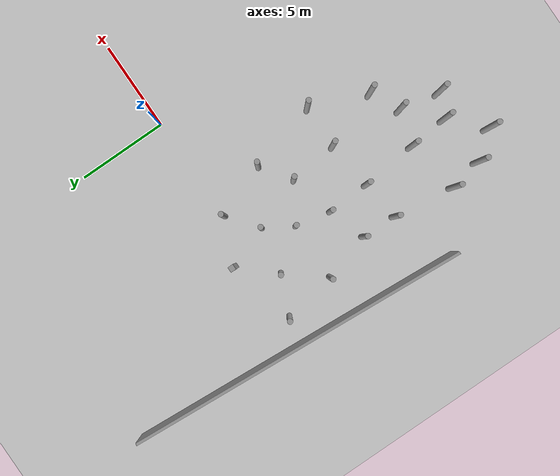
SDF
<sdf version="1.6">
 <world name="default">
  <model name="ground_plane">
   <static>1</static>
   <link name="link">
    <collision name="collision">
     <geometry><plane><normal>0 0 1</normal><size>100 100</size></plane></geometry>
    </collision>
    <visual name="visual">
     <cast_shadows>0</cast_shadows>
     <geometry><plane><normal>0 0 1</normal><size>100 100</size></plane></geometry>
     <material>
      <script><uri>file://media/materials/scripts/gazebo.material</uri><name>Gazebo/Gray</name></script>
     </material>
    </visual>
   </link>
  </model>
  <model name="unit_box_clone_15">
   <link name="link">
    <inertial>
     <mass>1000</mass>
     <inertia><ixx>166.667</ixx><ixy>0</ixy><ixz>0</ixz><iyy>166.667</iyy><iyz>0</iyz><izz>166.667</izz></inertia>
    </inertial>
    <visual name="visual">
     <geometry><box><size>0.3 0.3 4</size></box></geometry>
     <material>
      <script><name>Gazebo/Grey</name><uri>file://media/materials/scripts/gazebo.material</uri></script>
      <shader type="vertex"><normal_map>__default__</normal_map></shader>
      <ambient>0.3 0.3 0.3 1</ambient>
      <diffuse>0.7 0.7 0.7 1</diffuse>
      <specular>0.01 0.01 0.01 1</specular>
      <emissive>0 0 0 1</emissive>
     </material>
    </visual>
    <collision name="collision">
     <geometry><box><size>0.3 0.3 4</size></box></geometry>
     <surface>
      <friction>
       <ode><mu>1</mu><mu2>1</mu2><fdir1>0 0 0</fdir1><slip1>0</slip1><slip2>0</slip2></ode>
       <torsional>
        <coefficient>1</coefficient>
        <patch_radius>0</patch_radius>
        <surface_radius>0</surface_radius>
        <use_patch_radius>1</use_patch_radius>
        <ode><slip>0</slip></ode>
       </torsional>
      </friction>
      <bounce><restitution_coefficient>0</restitution_coefficient><threshold>1e+06</threshold></bounce>
      <contact>
       <collide_without_contact>0</collide_without_contact>
       <collide_without_contact_bitmask>1</collide_without_contact_bitmask>
       <collide_bitmask>1</collide_bitmask>
       <ode>
        <soft_cfm>0</soft_cfm>
        <soft_erp>0.2</soft_erp>
        <kp>1e+13</kp>
        <kd>1</kd>
        <max_vel>0.01</max_vel>
        <min_depth>0</min_depth>
       </ode>
       <bullet>
        <split_impulse>1</split_impulse>
        <split_impulse_penetration_threshold>-0.01</split_impulse_penetration_threshold>
        <soft_cfm>0</soft_cfm>
        <soft_erp>0.2</soft_erp>
        <kp>1e+13</kp>
        <kd>1</kd>
       </bullet>
      </contact>
     </surface>
    </collision>
   </link>
   <static>0</static>
   <pose>-8.5234 1.00011 2.00001 -1e-05 -4.3e-05 -0.001587</pose>
  </model>
  <model name="unit_cylinder_clone_1_clone">
   <link name="link">
    <inertial>
     <mass>1000</mass>
     <inertia><ixx>145.833</ixx><ixy>0</ixy><ixz>0</ixz><iyy>145.833</iyy><iyz>0</iyz><izz>125</izz></inertia>
    </inertial>
    <visual name="visual">
     <geometry><cylinder><radius>0.15</radius><length>4</length></cylinder></geometry>
     <material>
      <script><name>Gazebo/Grey</name><uri>file://media/materials/scripts/gazebo.material</uri></script>
      <shader type="vertex"><normal_map>__default__</normal_map></shader>
      <ambient>0.3 0.3 0.3 1</ambient>
      <diffuse>0.7 0.7 0.7 1</diffuse>
      <specular>0.01 0.01 0.01 1</specular>
      <emissive>0 0 0 1</emissive>
     </material>
    </visual>
    <collision name="collision">
     <geometry><cylinder><radius>0.15</radius><length>4</length></cylinder></geometry>
     <surface>
      <friction>
       <ode><mu>1</mu><mu2>1</mu2><fdir1>0 0 0</fdir1><slip1>0</slip1><slip2>0</slip2></ode>
       <torsional>
        <coefficient>1</coefficient>
        <patch_radius>0</patch_radius>
        <surface_radius>0</surface_radius>
        <use_patch_radius>1</use_patch_radius>
        <ode><slip>0</slip></ode>
       </torsional>
      </friction>
      <bounce><restitution_coefficient>0</restitution_coefficient><threshold>1e+06</threshold></bounce>
      <contact>
       <collide_without_contact>0</collide_without_contact>
       <collide_without_contact_bitmask>1</collide_without_contact_bitmask>
       <collide_bitmask>1</collide_bitmask>
       <ode>
        <soft_cfm>0</soft_cfm>
        <soft_erp>0.2</soft_erp>
        <kp>1e+13</kp>
        <kd>1</kd>
        <max_vel>0.01</max_vel>
        <min_depth>0</min_depth>
       </ode>
       <bullet>
        <split_impulse>1</split_impulse>
        <split_impulse_penetration_threshold>-0.01</split_impulse_penetration_threshold>
        <soft_cfm>0</soft_cfm>
        <soft_erp>0.2</soft_erp>
        <kp>1e+13</kp>
        <kd>1</kd>
       </bullet>
      </contact>
     </surface>
    </collision>
   </link>
   <static>0</static>
   <pose>-3.80698 -6.85046 1.99995 -0.000251 0.000106 -0.394235</pose>
  </model>
  <model name="unit_cylinder_clone_1_clone_0">
   <link name="link">
    <inertial>
     <mass>1000</mass>
     <inertia><ixx>145.833</ixx><ixy>0</ixy><ixz>0</ixz><iyy>145.833</iyy><iyz>0</iyz><izz>125</izz></inertia>
    </inertial>
    <visual name="visual">
     <geometry><cylinder><radius>0.15</radius><length>4</length></cylinder></geometry>
     <material>
      <script><name>Gazebo/Grey</name><uri>file://media/materials/scripts/gazebo.material</uri></script>
      <shader type="vertex"><normal_map>__default__</normal_map></shader>
      <ambient>0.3 0.3 0.3 1</ambient>
      <diffuse>0.7 0.7 0.7 1</diffuse>
      <specular>0.01 0.01 0.01 1</specular>
      <emissive>0 0 0 1</emissive>
     </material>
    </visual>
    <collision name="collision">
     <geometry><cylinder><radius>0.15</radius><length>4</length></cylinder></geometry>
     <surface>
      <friction>
       <ode><mu>1</mu><mu2>1</mu2><fdir1>0 0 0</fdir1><slip1>0</slip1><slip2>0</slip2></ode>
       <torsional>
        <coefficient>1</coefficient>
        <patch_radius>0</patch_radius>
        <surface_radius>0</surface_radius>
        <use_patch_radius>1</use_patch_radius>
        <ode><slip>0</slip></ode>
       </torsional>
      </friction>
      <bounce><restitution_coefficient>0</restitution_coefficient><threshold>1e+06</threshold></bounce>
      <contact>
       <collide_without_contact>0</collide_without_contact>
       <collide_without_contact_bitmask>1</collide_without_contact_bitmask>
       <collide_bitmask>1</collide_bitmask>
       <ode>
        <soft_cfm>0</soft_cfm>
        <soft_erp>0.2</soft_erp>
        <kp>1e+13</kp>
        <kd>1</kd>
        <max_vel>0.01</max_vel>
        <min_depth>0</min_depth>
       </ode>
       <bullet>
        <split_impulse>1</split_impulse>
        <split_impulse_penetration_threshold>-0.01</split_impulse_penetration_threshold>
        <soft_cfm>0</soft_cfm>
        <soft_erp>0.2</soft_erp>
        <kp>1e+13</kp>
        <kd>1</kd>
       </bullet>
      </contact>
     </surface>
    </collision>
   </link>
   <static>0</static>
   <pose>-8.56983 -2.859 1.99995 -0.000251 0.000106 -0.392513</pose>
  </model>
  <model name="unit_cylinder_clone_1_clone_1">
   <link name="link">
    <inertial>
     <mass>1000</mass>
     <inertia><ixx>145.833</ixx><ixy>0</ixy><ixz>0</ixz><iyy>145.833</iyy><iyz>0</iyz><izz>125</izz></inertia>
    </inertial>
    <visual name="visual">
     <geometry><cylinder><radius>0.15</radius><length>4</length></cylinder></geometry>
     <material>
      <script><name>Gazebo/Grey</name><uri>file://media/materials/scripts/gazebo.material</uri></script>
      <shader type="vertex"><normal_map>__default__</normal_map></shader>
      <ambient>0.3 0.3 0.3 1</ambient>
      <diffuse>0.7 0.7 0.7 1</diffuse>
      <specular>0.01 0.01 0.01 1</specular>
      <emissive>0 0 0 1</emissive>
     </material>
    </visual>
    <collision name="collision">
     <geometry><cylinder><radius>0.15</radius><length>4</length></cylinder></geometry>
     <surface>
      <friction>
       <ode><mu>1</mu><mu2>1</mu2><fdir1>0 0 0</fdir1><slip1>0</slip1><slip2>0</slip2></ode>
       <torsional>
        <coefficient>1</coefficient>
        <patch_radius>0</patch_radius>
        <surface_radius>0</surface_radius>
        <use_patch_radius>1</use_patch_radius>
        <ode><slip>0</slip></ode>
       </torsional>
      </friction>
      <bounce><restitution_coefficient>0</restitution_coefficient><threshold>1e+06</threshold></bounce>
      <contact>
       <collide_without_contact>0</collide_without_contact>
       <collide_without_contact_bitmask>1</collide_without_contact_bitmask>
       <collide_bitmask>1</collide_bitmask>
       <ode>
        <soft_cfm>0</soft_cfm>
        <soft_erp>0.2</soft_erp>
        <kp>1e+13</kp>
        <kd>1</kd>
        <max_vel>0.01</max_vel>
        <min_depth>0</min_depth>
       </ode>
       <bullet>
        <split_impulse>1</split_impulse>
        <split_impulse_penetration_threshold>-0.01</split_impulse_penetration_threshold>
        <soft_cfm>0</soft_cfm>
        <soft_erp>0.2</soft_erp>
        <kp>1e+13</kp>
        <kd>1</kd>
       </bullet>
      </contact>
     </surface>
    </collision>
   </link>
   <static>0</static>
   <pose>-11.8073 -2.83621 1.99995 -0.000251 0.000106 -0.395906</pose>
  </model>
  <model name="unit_cylinder_clone_1_clone_2">
   <link name="link">
    <inertial>
     <mass>1000</mass>
     <inertia><ixx>145.833</ixx><ixy>0</ixy><ixz>0</ixz><iyy>145.833</iyy><iyz>0</iyz><izz>125</izz></inertia>
    </inertial>
    <visual name="visual">
     <geometry><cylinder><radius>0.15</radius><length>4</length></cylinder></geometry>
     <material>
      <script><name>Gazebo/Grey</name><uri>file://media/materials/scripts/gazebo.material</uri></script>
      <shader type="vertex"><normal_map>__default__</normal_map></shader>
      <ambient>0.3 0.3 0.3 1</ambient>
      <diffuse>0.7 0.7 0.7 1</diffuse>
      <specular>0.01 0.01 0.01 1</specular>
      <emissive>0 0 0 1</emissive>
     </material>
    </visual>
    <collision name="collision">
     <geometry><cylinder><radius>0.15</radius><length>4</length></cylinder></geometry>
     <surface>
      <friction>
       <ode><mu>1</mu><mu2>1</mu2><fdir1>0 0 0</fdir1><slip1>0</slip1><slip2>0</slip2></ode>
       <torsional>
        <coefficient>1</coefficient>
        <patch_radius>0</patch_radius>
        <surface_radius>0</surface_radius>
        <use_patch_radius>1</use_patch_radius>
        <ode><slip>0</slip></ode>
       </torsional>
      </friction>
      <bounce><restitution_coefficient>0</restitution_coefficient><threshold>1e+06</threshold></bounce>
      <contact>
       <collide_without_contact>0</collide_without_contact>
       <collide_without_contact_bitmask>1</collide_without_contact_bitmask>
       <collide_bitmask>1</collide_bitmask>
       <ode>
        <soft_cfm>0</soft_cfm>
        <soft_erp>0.2</soft_erp>
        <kp>1e+13</kp>
        <kd>1</kd>
        <max_vel>0.01</max_vel>
        <min_depth>0</min_depth>
       </ode>
       <bullet>
        <split_impulse>1</split_impulse>
        <split_impulse_penetration_threshold>-0.01</split_impulse_penetration_threshold>
        <soft_cfm>0</soft_cfm>
        <soft_erp>0.2</soft_erp>
        <kp>1e+13</kp>
        <kd>1</kd>
       </bullet>
      </contact>
     </surface>
    </collision>
   </link>
   <static>0</static>
   <pose>-6.21285 -6.79749 1.99995 -0.000251 0.000106 -0.393123</pose>
  </model>
  <model name="unit_cylinder_clone_1_clone_3">
   <link name="link">
    <inertial>
     <mass>1000</mass>
     <inertia><ixx>145.833</ixx><ixy>0</ixy><ixz>0</ixz><iyy>145.833</iyy><iyz>0</iyz><izz>125</izz></inertia>
    </inertial>
    <visual name="visual">
     <geometry><cylinder><radius>0.15</radius><length>4</length></cylinder></geometry>
     <material>
      <script><name>Gazebo/Grey</name><uri>file://media/materials/scripts/gazebo.material</uri></script>
      <shader type="vertex"><normal_map>__default__</normal_map></shader>
      <ambient>0.3 0.3 0.3 1</ambient>
      <diffuse>0.7 0.7 0.7 1</diffuse>
      <specular>0.01 0.01 0.01 1</specular>
      <emissive>0 0 0 1</emissive>
     </material>
    </visual>
    <collision name="collision">
     <geometry><cylinder><radius>0.15</radius><length>4</length></cylinder></geometry>
     <surface>
      <friction>
       <ode><mu>1</mu><mu2>1</mu2><fdir1>0 0 0</fdir1><slip1>0</slip1><slip2>0</slip2></ode>
       <torsional>
        <coefficient>1</coefficient>
        <patch_radius>0</patch_radius>
        <surface_radius>0</surface_radius>
        <use_patch_radius>1</use_patch_radius>
        <ode><slip>0</slip></ode>
       </torsional>
      </friction>
      <bounce><restitution_coefficient>0</restitution_coefficient><threshold>1e+06</threshold></bounce>
      <contact>
       <collide_without_contact>0</collide_without_contact>
       <collide_without_contact_bitmask>1</collide_without_contact_bitmask>
       <collide_bitmask>1</collide_bitmask>
       <ode>
        <soft_cfm>0</soft_cfm>
        <soft_erp>0.2</soft_erp>
        <kp>1e+13</kp>
        <kd>1</kd>
        <max_vel>0.01</max_vel>
        <min_depth>0</min_depth>
       </ode>
       <bullet>
        <split_impulse>1</split_impulse>
        <split_impulse_penetration_threshold>-0.01</split_impulse_penetration_threshold>
        <soft_cfm>0</soft_cfm>
        <soft_erp>0.2</soft_erp>
        <kp>1e+13</kp>
        <kd>1</kd>
       </bullet>
      </contact>
     </surface>
    </collision>
   </link>
   <static>0</static>
   <pose>-7.64323 -1.32454 1.99995 -0.000252 0.000105 -0.397866</pose>
  </model>
  <model name="unit_cylinder_clone_1_clone_4">
   <link name="link">
    <inertial>
     <mass>1000</mass>
     <inertia><ixx>145.833</ixx><ixy>0</ixy><ixz>0</ixz><iyy>145.833</iyy><iyz>0</iyz><izz>125</izz></inertia>
    </inertial>
    <visual name="visual">
     <geometry><cylinder><radius>0.15</radius><length>4</length></cylinder></geometry>
     <material>
      <script><name>Gazebo/Grey</name><uri>file://media/materials/scripts/gazebo.material</uri></script>
      <shader type="vertex"><normal_map>__default__</normal_map></shader>
      <ambient>0.3 0.3 0.3 1</ambient>
      <diffuse>0.7 0.7 0.7 1</diffuse>
      <specular>0.01 0.01 0.01 1</specular>
      <emissive>0 0 0 1</emissive>
     </material>
    </visual>
    <collision name="collision">
     <geometry><cylinder><radius>0.15</radius><length>4</length></cylinder></geometry>
     <surface>
      <friction>
       <ode><mu>1</mu><mu2>1</mu2><fdir1>0 0 0</fdir1><slip1>0</slip1><slip2>0</slip2></ode>
       <torsional>
        <coefficient>1</coefficient>
        <patch_radius>0</patch_radius>
        <surface_radius>0</surface_radius>
        <use_patch_radius>1</use_patch_radius>
        <ode><slip>0</slip></ode>
       </torsional>
      </friction>
      <bounce><restitution_coefficient>0</restitution_coefficient><threshold>1e+06</threshold></bounce>
      <contact>
       <collide_without_contact>0</collide_without_contact>
       <collide_without_contact_bitmask>1</collide_without_contact_bitmask>
       <collide_bitmask>1</collide_bitmask>
       <ode>
        <soft_cfm>0</soft_cfm>
        <soft_erp>0.2</soft_erp>
        <kp>1e+13</kp>
        <kd>1</kd>
        <max_vel>0.01</max_vel>
        <min_depth>0</min_depth>
       </ode>
       <bullet>
        <split_impulse>1</split_impulse>
        <split_impulse_penetration_threshold>-0.01</split_impulse_penetration_threshold>
        <soft_cfm>0</soft_cfm>
        <soft_erp>0.2</soft_erp>
        <kp>1e+13</kp>
        <kd>1</kd>
       </bullet>
      </contact>
     </surface>
    </collision>
   </link>
   <static>0</static>
   <pose>-8.96274 -4.78721 1.99995 -0.000252 0.000105 -0.397868</pose>
  </model>
  <model name="unit_cylinder_clone_1_clone_6">
   <link name="link">
    <inertial>
     <mass>1000</mass>
     <inertia><ixx>145.833</ixx><ixy>0</ixy><ixz>0</ixz><iyy>145.833</iyy><iyz>0</iyz><izz>125</izz></inertia>
    </inertial>
    <visual name="visual">
     <geometry><cylinder><radius>0.15</radius><length>4</length></cylinder></geometry>
     <material>
      <script><name>Gazebo/Grey</name><uri>file://media/materials/scripts/gazebo.material</uri></script>
      <shader type="vertex"><normal_map>__default__</normal_map></shader>
      <ambient>0.3 0.3 0.3 1</ambient>
      <diffuse>0.7 0.7 0.7 1</diffuse>
      <specular>0.01 0.01 0.01 1</specular>
      <emissive>0 0 0 1</emissive>
     </material>
    </visual>
    <collision name="collision">
     <geometry><cylinder><radius>0.15</radius><length>4</length></cylinder></geometry>
     <surface>
      <friction>
       <ode><mu>1</mu><mu2>1</mu2><fdir1>0 0 0</fdir1><slip1>0</slip1><slip2>0</slip2></ode>
       <torsional>
        <coefficient>1</coefficient>
        <patch_radius>0</patch_radius>
        <surface_radius>0</surface_radius>
        <use_patch_radius>1</use_patch_radius>
        <ode><slip>0</slip></ode>
       </torsional>
      </friction>
      <bounce><restitution_coefficient>0</restitution_coefficient><threshold>1e+06</threshold></bounce>
      <contact>
       <collide_without_contact>0</collide_without_contact>
       <collide_without_contact_bitmask>1</collide_without_contact_bitmask>
       <collide_bitmask>1</collide_bitmask>
       <ode>
        <soft_cfm>0</soft_cfm>
        <soft_erp>0.2</soft_erp>
        <kp>1e+13</kp>
        <kd>1</kd>
        <max_vel>0.01</max_vel>
        <min_depth>0</min_depth>
       </ode>
       <bullet>
        <split_impulse>1</split_impulse>
        <split_impulse_penetration_threshold>-0.01</split_impulse_penetration_threshold>
        <soft_cfm>0</soft_cfm>
        <soft_erp>0.2</soft_erp>
        <kp>1e+13</kp>
        <kd>1</kd>
       </bullet>
      </contact>
     </surface>
    </collision>
   </link>
   <static>0</static>
   <pose>-6.51701 -4.13477 1.99998 -2e-06 -0 -0.102895</pose>
  </model>
  <model name="unit_cylinder_clone_1_clone_11">
   <link name="link">
    <inertial>
     <mass>1000</mass>
     <inertia><ixx>145.833</ixx><ixy>0</ixy><ixz>0</ixz><iyy>145.833</iyy><iyz>0</iyz><izz>125</izz></inertia>
    </inertial>
    <visual name="visual">
     <geometry><cylinder><radius>0.15</radius><length>4</length></cylinder></geometry>
     <material>
      <script><name>Gazebo/Grey</name><uri>file://media/materials/scripts/gazebo.material</uri></script>
      <shader type="vertex"><normal_map>__default__</normal_map></shader>
      <ambient>0.3 0.3 0.3 1</ambient>
      <diffuse>0.7 0.7 0.7 1</diffuse>
      <specular>0.01 0.01 0.01 1</specular>
      <emissive>0 0 0 1</emissive>
     </material>
    </visual>
    <collision name="collision">
     <geometry><cylinder><radius>0.15</radius><length>4</length></cylinder></geometry>
     <surface>
      <friction>
       <ode><mu>1</mu><mu2>1</mu2><fdir1>0 0 0</fdir1><slip1>0</slip1><slip2>0</slip2></ode>
       <torsional>
        <coefficient>1</coefficient>
        <patch_radius>0</patch_radius>
        <surface_radius>0</surface_radius>
        <use_patch_radius>1</use_patch_radius>
        <ode><slip>0</slip></ode>
       </torsional>
      </friction>
      <bounce><restitution_coefficient>0</restitution_coefficient><threshold>1e+06</threshold></bounce>
      <contact>
       <collide_without_contact>0</collide_without_contact>
       <collide_without_contact_bitmask>1</collide_without_contact_bitmask>
       <collide_bitmask>1</collide_bitmask>
       <ode>
        <soft_cfm>0</soft_cfm>
        <soft_erp>0.2</soft_erp>
        <kp>1e+13</kp>
        <kd>1</kd>
        <max_vel>0.01</max_vel>
        <min_depth>0</min_depth>
       </ode>
       <bullet>
        <split_impulse>1</split_impulse>
        <split_impulse_penetration_threshold>-0.01</split_impulse_penetration_threshold>
        <soft_cfm>0</soft_cfm>
        <soft_erp>0.2</soft_erp>
        <kp>1e+13</kp>
        <kd>1</kd>
       </bullet>
      </contact>
     </surface>
    </collision>
   </link>
   <static>0</static>
   <pose>-4.86901 -3.0087 1.99995 -0.000251 0.000106 -0.393032</pose>
  </model>
  <model name="unit_cylinder_clone_1_clone_12">
   <link name="link">
    <inertial>
     <mass>1000</mass>
     <inertia><ixx>145.833</ixx><ixy>0</ixy><ixz>0</ixz><iyy>145.833</iyy><iyz>0</iyz><izz>125</izz></inertia>
    </inertial>
    <visual name="visual">
     <geometry><cylinder><radius>0.15</radius><length>4</length></cylinder></geometry>
     <material>
      <script><name>Gazebo/Grey</name><uri>file://media/materials/scripts/gazebo.material</uri></script>
      <shader type="vertex"><normal_map>__default__</normal_map></shader>
      <ambient>0.3 0.3 0.3 1</ambient>
      <diffuse>0.7 0.7 0.7 1</diffuse>
      <specular>0.01 0.01 0.01 1</specular>
      <emissive>0 0 0 1</emissive>
     </material>
    </visual>
    <collision name="collision">
     <geometry><cylinder><radius>0.15</radius><length>4</length></cylinder></geometry>
     <surface>
      <friction>
       <ode><mu>1</mu><mu2>1</mu2><fdir1>0 0 0</fdir1><slip1>0</slip1><slip2>0</slip2></ode>
       <torsional>
        <coefficient>1</coefficient>
        <patch_radius>0</patch_radius>
        <surface_radius>0</surface_radius>
        <use_patch_radius>1</use_patch_radius>
        <ode><slip>0</slip></ode>
       </torsional>
      </friction>
      <bounce><restitution_coefficient>0</restitution_coefficient><threshold>1e+06</threshold></bounce>
      <contact>
       <collide_without_contact>0</collide_without_contact>
       <collide_without_contact_bitmask>1</collide_without_contact_bitmask>
       <collide_bitmask>1</collide_bitmask>
       <ode>
        <soft_cfm>0</soft_cfm>
        <soft_erp>0.2</soft_erp>
        <kp>1e+13</kp>
        <kd>1</kd>
        <max_vel>0.01</max_vel>
        <min_depth>0</min_depth>
       </ode>
       <bullet>
        <split_impulse>1</split_impulse>
        <split_impulse_penetration_threshold>-0.01</split_impulse_penetration_threshold>
        <soft_cfm>0</soft_cfm>
        <soft_erp>0.2</soft_erp>
        <kp>1e+13</kp>
        <kd>1</kd>
       </bullet>
      </contact>
     </surface>
    </collision>
   </link>
   <static>0</static>
   <pose>-6.00225 -0.068328 1.99995 -0.000252 0.000105 -0.397865</pose>
  </model>
  <model name="unit_cylinder_clone_1_clone_14">
   <link name="link">
    <inertial>
     <mass>1000</mass>
     <inertia><ixx>145.833</ixx><ixy>0</ixy><ixz>0</ixz><iyy>145.833</iyy><iyz>0</iyz><izz>125</izz></inertia>
    </inertial>
    <visual name="visual">
     <geometry><cylinder><radius>0.15</radius><length>4</length></cylinder></geometry>
     <material>
      <script><name>Gazebo/Grey</name><uri>file://media/materials/scripts/gazebo.material</uri></script>
      <shader type="vertex"><normal_map>__default__</normal_map></shader>
      <ambient>0.3 0.3 0.3 1</ambient>
      <diffuse>0.7 0.7 0.7 1</diffuse>
      <specular>0.01 0.01 0.01 1</specular>
      <emissive>0 0 0 1</emissive>
     </material>
    </visual>
    <collision name="collision">
     <geometry><cylinder><radius>0.15</radius><length>4</length></cylinder></geometry>
     <surface>
      <friction>
       <ode><mu>1</mu><mu2>1</mu2><fdir1>0 0 0</fdir1><slip1>0</slip1><slip2>0</slip2></ode>
       <torsional>
        <coefficient>1</coefficient>
        <patch_radius>0</patch_radius>
        <surface_radius>0</surface_radius>
        <use_patch_radius>1</use_patch_radius>
        <ode><slip>0</slip></ode>
       </torsional>
      </friction>
      <bounce><restitution_coefficient>0</restitution_coefficient><threshold>1e+06</threshold></bounce>
      <contact>
       <collide_without_contact>0</collide_without_contact>
       <collide_without_contact_bitmask>1</collide_without_contact_bitmask>
       <collide_bitmask>1</collide_bitmask>
       <ode>
        <soft_cfm>0</soft_cfm>
        <soft_erp>0.2</soft_erp>
        <kp>1e+13</kp>
        <kd>1</kd>
        <max_vel>0.01</max_vel>
        <min_depth>0</min_depth>
       </ode>
       <bullet>
        <split_impulse>1</split_impulse>
        <split_impulse_penetration_threshold>-0.01</split_impulse_penetration_threshold>
        <soft_cfm>0</soft_cfm>
        <soft_erp>0.2</soft_erp>
        <kp>1e+13</kp>
        <kd>1</kd>
       </bullet>
      </contact>
     </surface>
    </collision>
   </link>
   <static>0</static>
   <pose>-10.1706 -0.819635 1.99995 -0.000252 0.000105 -0.397858</pose>
  </model>
  <model name="unit_cylinder_clone_1_clone_15">
   <link name="link">
    <inertial>
     <mass>1000</mass>
     <inertia><ixx>145.833</ixx><ixy>0</ixy><ixz>0</ixz><iyy>145.833</iyy><iyz>0</iyz><izz>125</izz></inertia>
    </inertial>
    <visual name="visual">
     <geometry><cylinder><radius>0.15</radius><length>4</length></cylinder></geometry>
     <material>
      <script><name>Gazebo/Grey</name><uri>file://media/materials/scripts/gazebo.material</uri></script>
      <shader type="vertex"><normal_map>__default__</normal_map></shader>
      <ambient>0.3 0.3 0.3 1</ambient>
      <diffuse>0.7 0.7 0.7 1</diffuse>
      <specular>0.01 0.01 0.01 1</specular>
      <emissive>0 0 0 1</emissive>
     </material>
    </visual>
    <collision name="collision">
     <geometry><cylinder><radius>0.15</radius><length>4</length></cylinder></geometry>
     <surface>
      <friction>
       <ode><mu>1</mu><mu2>1</mu2><fdir1>0 0 0</fdir1><slip1>0</slip1><slip2>0</slip2></ode>
       <torsional>
        <coefficient>1</coefficient>
        <patch_radius>0</patch_radius>
        <surface_radius>0</surface_radius>
        <use_patch_radius>1</use_patch_radius>
        <ode><slip>0</slip></ode>
       </torsional>
      </friction>
      <bounce><restitution_coefficient>0</restitution_coefficient><threshold>1e+06</threshold></bounce>
      <contact>
       <collide_without_contact>0</collide_without_contact>
       <collide_without_contact_bitmask>1</collide_without_contact_bitmask>
       <collide_bitmask>1</collide_bitmask>
       <ode>
        <soft_cfm>0</soft_cfm>
        <soft_erp>0.2</soft_erp>
        <kp>1e+13</kp>
        <kd>1</kd>
        <max_vel>0.01</max_vel>
        <min_depth>0</min_depth>
       </ode>
       <bullet>
        <split_impulse>1</split_impulse>
        <split_impulse_penetration_threshold>-0.01</split_impulse_penetration_threshold>
        <soft_cfm>0</soft_cfm>
        <soft_erp>0.2</soft_erp>
        <kp>1e+13</kp>
        <kd>1</kd>
       </bullet>
      </contact>
     </surface>
    </collision>
   </link>
   <static>0</static>
   <pose>-11.0708 -7.3976 1.99995 -0.000251 0.000106 -0.393078</pose>
  </model>
  <model name="unit_cylinder_clone_1_clone_16">
   <link name="link">
    <inertial>
     <mass>1000</mass>
     <inertia><ixx>145.833</ixx><ixy>0</ixy><ixz>0</ixz><iyy>145.833</iyy><iyz>0</iyz><izz>125</izz></inertia>
    </inertial>
    <visual name="visual">
     <geometry><cylinder><radius>0.15</radius><length>4</length></cylinder></geometry>
     <material>
      <script><name>Gazebo/Grey</name><uri>file://media/materials/scripts/gazebo.material</uri></script>
      <shader type="vertex"><normal_map>__default__</normal_map></shader>
      <ambient>0.3 0.3 0.3 1</ambient>
      <diffuse>0.7 0.7 0.7 1</diffuse>
      <specular>0.01 0.01 0.01 1</specular>
      <emissive>0 0 0 1</emissive>
     </material>
    </visual>
    <collision name="collision">
     <geometry><cylinder><radius>0.15</radius><length>4</length></cylinder></geometry>
     <surface>
      <friction>
       <ode><mu>1</mu><mu2>1</mu2><fdir1>0 0 0</fdir1><slip1>0</slip1><slip2>0</slip2></ode>
       <torsional>
        <coefficient>1</coefficient>
        <patch_radius>0</patch_radius>
        <surface_radius>0</surface_radius>
        <use_patch_radius>1</use_patch_radius>
        <ode><slip>0</slip></ode>
       </torsional>
      </friction>
      <bounce><restitution_coefficient>0</restitution_coefficient><threshold>1e+06</threshold></bounce>
      <contact>
       <collide_without_contact>0</collide_without_contact>
       <collide_without_contact_bitmask>1</collide_without_contact_bitmask>
       <collide_bitmask>1</collide_bitmask>
       <ode>
        <soft_cfm>0</soft_cfm>
        <soft_erp>0.2</soft_erp>
        <kp>1e+13</kp>
        <kd>1</kd>
        <max_vel>0.01</max_vel>
        <min_depth>0</min_depth>
       </ode>
       <bullet>
        <split_impulse>1</split_impulse>
        <split_impulse_penetration_threshold>-0.01</split_impulse_penetration_threshold>
        <soft_cfm>0</soft_cfm>
        <soft_erp>0.2</soft_erp>
        <kp>1e+13</kp>
        <kd>1</kd>
       </bullet>
      </contact>
     </surface>
    </collision>
   </link>
   <static>0</static>
   <pose>-5.02032 -9.97935 1.99995 -0.000252 0.000105 -0.397857</pose>
  </model>
  <model name="unit_cylinder_clone_1_clone_18">
   <link name="link">
    <inertial>
     <mass>1000</mass>
     <inertia><ixx>145.833</ixx><ixy>0</ixy><ixz>0</ixz><iyy>145.833</iyy><iyz>0</iyz><izz>125</izz></inertia>
    </inertial>
    <visual name="visual">
     <geometry><cylinder><radius>0.15</radius><length>4</length></cylinder></geometry>
     <material>
      <script><name>Gazebo/Grey</name><uri>file://media/materials/scripts/gazebo.material</uri></script>
      <shader type="vertex"><normal_map>__default__</normal_map></shader>
      <ambient>0.3 0.3 0.3 1</ambient>
      <diffuse>0.7 0.7 0.7 1</diffuse>
      <specular>0.01 0.01 0.01 1</specular>
      <emissive>0 0 0 1</emissive>
     </material>
    </visual>
    <collision name="collision">
     <geometry><cylinder><radius>0.15</radius><length>4</length></cylinder></geometry>
     <surface>
      <friction>
       <ode><mu>1</mu><mu2>1</mu2><fdir1>0 0 0</fdir1><slip1>0</slip1><slip2>0</slip2></ode>
       <torsional>
        <coefficient>1</coefficient>
        <patch_radius>0</patch_radius>
        <surface_radius>0</surface_radius>
        <use_patch_radius>1</use_patch_radius>
        <ode><slip>0</slip></ode>
       </torsional>
      </friction>
      <bounce><restitution_coefficient>0</restitution_coefficient><threshold>1e+06</threshold></bounce>
      <contact>
       <collide_without_contact>0</collide_without_contact>
       <collide_without_contact_bitmask>1</collide_without_contact_bitmask>
       <collide_bitmask>1</collide_bitmask>
       <ode>
        <soft_cfm>0</soft_cfm>
        <soft_erp>0.2</soft_erp>
        <kp>1e+13</kp>
        <kd>1</kd>
        <max_vel>0.01</max_vel>
        <min_depth>0</min_depth>
       </ode>
       <bullet>
        <split_impulse>1</split_impulse>
        <split_impulse_penetration_threshold>-0.01</split_impulse_penetration_threshold>
        <soft_cfm>0</soft_cfm>
        <soft_erp>0.2</soft_erp>
        <kp>1e+13</kp>
        <kd>1</kd>
       </bullet>
      </contact>
     </surface>
    </collision>
   </link>
   <static>0</static>
   <pose>-11.542 -10.7804 1.99995 -0.000251 0.000105 -0.396764</pose>
  </model>
  <model name="unit_cylinder_clone_1_clone_19">
   <link name="link">
    <inertial>
     <mass>1000</mass>
     <inertia><ixx>145.833</ixx><ixy>0</ixy><ixz>0</ixz><iyy>145.833</iyy><iyz>0</iyz><izz>125</izz></inertia>
    </inertial>
    <visual name="visual">
     <geometry><cylinder><radius>0.15</radius><length>4</length></cylinder></geometry>
     <material>
      <script><name>Gazebo/Grey</name><uri>file://media/materials/scripts/gazebo.material</uri></script>
      <shader type="vertex"><normal_map>__default__</normal_map></shader>
      <ambient>0.3 0.3 0.3 1</ambient>
      <diffuse>0.7 0.7 0.7 1</diffuse>
      <specular>0.01 0.01 0.01 1</specular>
      <emissive>0 0 0 1</emissive>
     </material>
    </visual>
    <collision name="collision">
     <geometry><cylinder><radius>0.15</radius><length>4</length></cylinder></geometry>
     <surface>
      <friction>
       <ode><mu>1</mu><mu2>1</mu2><fdir1>0 0 0</fdir1><slip1>0</slip1><slip2>0</slip2></ode>
       <torsional>
        <coefficient>1</coefficient>
        <patch_radius>0</patch_radius>
        <surface_radius>0</surface_radius>
        <use_patch_radius>1</use_patch_radius>
        <ode><slip>0</slip></ode>
       </torsional>
      </friction>
      <bounce><restitution_coefficient>0</restitution_coefficient><threshold>1e+06</threshold></bounce>
      <contact>
       <collide_without_contact>0</collide_without_contact>
       <collide_without_contact_bitmask>1</collide_without_contact_bitmask>
       <collide_bitmask>1</collide_bitmask>
       <ode>
        <soft_cfm>0</soft_cfm>
        <soft_erp>0.2</soft_erp>
        <kp>1e+13</kp>
        <kd>1</kd>
        <max_vel>0.01</max_vel>
        <min_depth>0</min_depth>
       </ode>
       <bullet>
        <split_impulse>1</split_impulse>
        <split_impulse_penetration_threshold>-0.01</split_impulse_penetration_threshold>
        <soft_cfm>0</soft_cfm>
        <soft_erp>0.2</soft_erp>
        <kp>1e+13</kp>
        <kd>1</kd>
       </bullet>
      </contact>
     </surface>
    </collision>
   </link>
   <static>0</static>
   <pose>-10.0319 -14.0633 1.99995 -0.000252 0.000105 -0.397853</pose>
  </model>
  <model name="unit_cylinder_clone_1_clone_21">
   <link name="link">
    <inertial>
     <mass>1000</mass>
     <inertia><ixx>145.833</ixx><ixy>0</ixy><ixz>0</ixz><iyy>145.833</iyy><iyz>0</iyz><izz>125</izz></inertia>
    </inertial>
    <visual name="visual">
     <geometry><cylinder><radius>0.15</radius><length>4</length></cylinder></geometry>
     <material>
      <script><name>Gazebo/Grey</name><uri>file://media/materials/scripts/gazebo.material</uri></script>
      <shader type="vertex"><normal_map>__default__</normal_map></shader>
      <ambient>0.3 0.3 0.3 1</ambient>
      <diffuse>0.7 0.7 0.7 1</diffuse>
      <specular>0.01 0.01 0.01 1</specular>
      <emissive>0 0 0 1</emissive>
     </material>
    </visual>
    <collision name="collision">
     <geometry><cylinder><radius>0.15</radius><length>4</length></cylinder></geometry>
     <surface>
      <friction>
       <ode><mu>1</mu><mu2>1</mu2><fdir1>0 0 0</fdir1><slip1>0</slip1><slip2>0</slip2></ode>
       <torsional>
        <coefficient>1</coefficient>
        <patch_radius>0</patch_radius>
        <surface_radius>0</surface_radius>
        <use_patch_radius>1</use_patch_radius>
        <ode><slip>0</slip></ode>
       </torsional>
      </friction>
      <bounce><restitution_coefficient>0</restitution_coefficient><threshold>1e+06</threshold></bounce>
      <contact>
       <collide_without_contact>0</collide_without_contact>
       <collide_without_contact_bitmask>1</collide_without_contact_bitmask>
       <collide_bitmask>1</collide_bitmask>
       <ode>
        <soft_cfm>0</soft_cfm>
        <soft_erp>0.2</soft_erp>
        <kp>1e+13</kp>
        <kd>1</kd>
        <max_vel>0.01</max_vel>
        <min_depth>0</min_depth>
       </ode>
       <bullet>
        <split_impulse>1</split_impulse>
        <split_impulse_penetration_threshold>-0.01</split_impulse_penetration_threshold>
        <soft_cfm>0</soft_cfm>
        <soft_erp>0.2</soft_erp>
        <kp>1e+13</kp>
        <kd>1</kd>
       </bullet>
      </contact>
     </surface>
    </collision>
   </link>
   <static>0</static>
   <pose>-8.33595 -12.4051 1.99995 -0.000252 0.000105 -0.397853</pose>
  </model>
  <model name="unit_cylinder_clone_1_clone_25">
   <link name="link">
    <inertial>
     <mass>1000</mass>
     <inertia><ixx>145.833</ixx><ixy>0</ixy><ixz>0</ixz><iyy>145.833</iyy><iyz>0</iyz><izz>125</izz></inertia>
    </inertial>
    <visual name="visual">
     <geometry><cylinder><radius>0.15</radius><length>4</length></cylinder></geometry>
     <material>
      <script><name>Gazebo/Grey</name><uri>file://media/materials/scripts/gazebo.material</uri></script>
      <shader type="vertex"><normal_map>__default__</normal_map></shader>
      <ambient>0.3 0.3 0.3 1</ambient>
      <diffuse>0.7 0.7 0.7 1</diffuse>
      <specular>0.01 0.01 0.01 1</specular>
      <emissive>0 0 0 1</emissive>
     </material>
    </visual>
    <collision name="collision">
     <geometry><cylinder><radius>0.15</radius><length>4</length></cylinder></geometry>
     <surface>
      <friction>
       <ode><mu>1</mu><mu2>1</mu2><fdir1>0 0 0</fdir1><slip1>0</slip1><slip2>0</slip2></ode>
       <torsional>
        <coefficient>1</coefficient>
        <patch_radius>0</patch_radius>
        <surface_radius>0</surface_radius>
        <use_patch_radius>1</use_patch_radius>
        <ode><slip>0</slip></ode>
       </torsional>
      </friction>
      <bounce><restitution_coefficient>0</restitution_coefficient><threshold>1e+06</threshold></bounce>
      <contact>
       <collide_without_contact>0</collide_without_contact>
       <collide_without_contact_bitmask>1</collide_without_contact_bitmask>
       <collide_bitmask>1</collide_bitmask>
       <ode>
        <soft_cfm>0</soft_cfm>
        <soft_erp>0.2</soft_erp>
        <kp>1e+13</kp>
        <kd>1</kd>
        <max_vel>0.01</max_vel>
        <min_depth>0</min_depth>
       </ode>
       <bullet>
        <split_impulse>1</split_impulse>
        <split_impulse_penetration_threshold>-0.01</split_impulse_penetration_threshold>
        <soft_cfm>0</soft_cfm>
        <soft_erp>0.2</soft_erp>
        <kp>1e+13</kp>
        <kd>1</kd>
       </bullet>
      </contact>
     </surface>
    </collision>
   </link>
   <static>0</static>
   <pose>-11.0204 -5.46809 1.99995 -0.000252 0.000105 -0.397858</pose>
  </model>
  <model name="unit_cylinder_clone_1_clone_26">
   <link name="link">
    <inertial>
     <mass>1000</mass>
     <inertia><ixx>145.833</ixx><ixy>0</ixy><ixz>0</ixz><iyy>145.833</iyy><iyz>0</iyz><izz>125</izz></inertia>
    </inertial>
    <visual name="visual">
     <geometry><cylinder><radius>0.15</radius><length>4</length></cylinder></geometry>
     <material>
      <script><name>Gazebo/Grey</name><uri>file://media/materials/scripts/gazebo.material</uri></script>
      <shader type="vertex"><normal_map>__default__</normal_map></shader>
      <ambient>0.3 0.3 0.3 1</ambient>
      <diffuse>0.7 0.7 0.7 1</diffuse>
      <specular>0.01 0.01 0.01 1</specular>
      <emissive>0 0 0 1</emissive>
     </material>
    </visual>
    <collision name="collision">
     <geometry><cylinder><radius>0.15</radius><length>4</length></cylinder></geometry>
     <surface>
      <friction>
       <ode><mu>1</mu><mu2>1</mu2><fdir1>0 0 0</fdir1><slip1>0</slip1><slip2>0</slip2></ode>
       <torsional>
        <coefficient>1</coefficient>
        <patch_radius>0</patch_radius>
        <surface_radius>0</surface_radius>
        <use_patch_radius>1</use_patch_radius>
        <ode><slip>0</slip></ode>
       </torsional>
      </friction>
      <bounce><restitution_coefficient>0</restitution_coefficient><threshold>1e+06</threshold></bounce>
      <contact>
       <collide_without_contact>0</collide_without_contact>
       <collide_without_contact_bitmask>1</collide_without_contact_bitmask>
       <collide_bitmask>1</collide_bitmask>
       <ode>
        <soft_cfm>0</soft_cfm>
        <soft_erp>0.2</soft_erp>
        <kp>1e+13</kp>
        <kd>1</kd>
        <max_vel>0.01</max_vel>
        <min_depth>0</min_depth>
       </ode>
       <bullet>
        <split_impulse>1</split_impulse>
        <split_impulse_penetration_threshold>-0.01</split_impulse_penetration_threshold>
        <soft_cfm>0</soft_cfm>
        <soft_erp>0.2</soft_erp>
        <kp>1e+13</kp>
        <kd>1</kd>
       </bullet>
      </contact>
     </surface>
    </collision>
   </link>
   <static>0</static>
   <pose>-7.02032 -12.9793 1.99995 -0.000252 0.000105 -0.397857</pose>
  </model>
  <model name="unit_cylinder_clone_1_clone_27">
   <link name="link">
    <inertial>
     <mass>1000</mass>
     <inertia><ixx>145.833</ixx><ixy>0</ixy><ixz>0</ixz><iyy>145.833</iyy><iyz>0</iyz><izz>125</izz></inertia>
    </inertial>
    <visual name="visual">
     <geometry><cylinder><radius>0.15</radius><length>4</length></cylinder></geometry>
     <material>
      <script><name>Gazebo/Grey</name><uri>file://media/materials/scripts/gazebo.material</uri></script>
      <shader type="vertex"><normal_map>__default__</normal_map></shader>
      <ambient>0.3 0.3 0.3 1</ambient>
      <diffuse>0.7 0.7 0.7 1</diffuse>
      <specular>0.01 0.01 0.01 1</specular>
      <emissive>0 0 0 1</emissive>
     </material>
    </visual>
    <collision name="collision">
     <geometry><cylinder><radius>0.15</radius><length>4</length></cylinder></geometry>
     <surface>
      <friction>
       <ode><mu>1</mu><mu2>1</mu2><fdir1>0 0 0</fdir1><slip1>0</slip1><slip2>0</slip2></ode>
       <torsional>
        <coefficient>1</coefficient>
        <patch_radius>0</patch_radius>
        <surface_radius>0</surface_radius>
        <use_patch_radius>1</use_patch_radius>
        <ode><slip>0</slip></ode>
       </torsional>
      </friction>
      <bounce><restitution_coefficient>0</restitution_coefficient><threshold>1e+06</threshold></bounce>
      <contact>
       <collide_without_contact>0</collide_without_contact>
       <collide_without_contact_bitmask>1</collide_without_contact_bitmask>
       <collide_bitmask>1</collide_bitmask>
       <ode>
        <soft_cfm>0</soft_cfm>
        <soft_erp>0.2</soft_erp>
        <kp>1e+13</kp>
        <kd>1</kd>
        <max_vel>0.01</max_vel>
        <min_depth>0</min_depth>
       </ode>
       <bullet>
        <split_impulse>1</split_impulse>
        <split_impulse_penetration_threshold>-0.01</split_impulse_penetration_threshold>
        <soft_cfm>0</soft_cfm>
        <soft_erp>0.2</soft_erp>
        <kp>1e+13</kp>
        <kd>1</kd>
       </bullet>
      </contact>
     </surface>
    </collision>
   </link>
   <static>0</static>
   <pose>-6.6189 -10.7763 1.99995 -0.000251 0.000106 -0.392704</pose>
  </model>
  <model name="unit_cylinder_clone_1_clone_30">
   <link name="link">
    <inertial>
     <mass>1000</mass>
     <inertia><ixx>145.833</ixx><ixy>0</ixy><ixz>0</ixz><iyy>145.833</iyy><iyz>0</iyz><izz>125</izz></inertia>
    </inertial>
    <visual name="visual">
     <geometry><cylinder><radius>0.15</radius><length>4</length></cylinder></geometry>
     <material>
      <script><name>Gazebo/Grey</name><uri>file://media/materials/scripts/gazebo.material</uri></script>
      <shader type="vertex"><normal_map>__default__</normal_map></shader>
      <ambient>0.3 0.3 0.3 1</ambient>
      <diffuse>0.7 0.7 0.7 1</diffuse>
      <specular>0.01 0.01 0.01 1</specular>
      <emissive>0 0 0 1</emissive>
     </material>
    </visual>
    <collision name="collision">
     <geometry><cylinder><radius>0.15</radius><length>4</length></cylinder></geometry>
     <surface>
      <friction>
       <ode><mu>1</mu><mu2>1</mu2><fdir1>0 0 0</fdir1><slip1>0</slip1><slip2>0</slip2></ode>
       <torsional>
        <coefficient>1</coefficient>
        <patch_radius>0</patch_radius>
        <surface_radius>0</surface_radius>
        <use_patch_radius>1</use_patch_radius>
        <ode><slip>0</slip></ode>
       </torsional>
      </friction>
      <bounce><restitution_coefficient>0</restitution_coefficient><threshold>1e+06</threshold></bounce>
      <contact>
       <collide_without_contact>0</collide_without_contact>
       <collide_without_contact_bitmask>1</collide_without_contact_bitmask>
       <collide_bitmask>1</collide_bitmask>
       <ode>
        <soft_cfm>0</soft_cfm>
        <soft_erp>0.2</soft_erp>
        <kp>1e+13</kp>
        <kd>1</kd>
        <max_vel>0.01</max_vel>
        <min_depth>0</min_depth>
       </ode>
       <bullet>
        <split_impulse>1</split_impulse>
        <split_impulse_penetration_threshold>-0.01</split_impulse_penetration_threshold>
        <soft_cfm>0</soft_cfm>
        <soft_erp>0.2</soft_erp>
        <kp>1e+13</kp>
        <kd>1</kd>
       </bullet>
      </contact>
     </surface>
    </collision>
   </link>
   <static>0</static>
   <pose>-8.54647 -10.2022 1.99995 -0.000252 0.000105 -0.397853</pose>
  </model>
  <model name="unit_cylinder_clone_1_clone_31">
   <link name="link">
    <inertial>
     <mass>1000</mass>
     <inertia><ixx>145.833</ixx><ixy>0</ixy><ixz>0</ixz><iyy>145.833</iyy><iyz>0</iyz><izz>125</izz></inertia>
    </inertial>
    <visual name="visual">
     <geometry><cylinder><radius>0.15</radius><length>4</length></cylinder></geometry>
     <material>
      <script><name>Gazebo/Grey</name><uri>file://media/materials/scripts/gazebo.material</uri></script>
      <shader type="vertex"><normal_map>__default__</normal_map></shader>
      <ambient>0.3 0.3 0.3 1</ambient>
      <diffuse>0.7 0.7 0.7 1</diffuse>
      <specular>0.01 0.01 0.01 1</specular>
      <emissive>0 0 0 1</emissive>
     </material>
    </visual>
    <collision name="collision">
     <geometry><cylinder><radius>0.15</radius><length>4</length></cylinder></geometry>
     <surface>
      <friction>
       <ode><mu>1</mu><mu2>1</mu2><fdir1>0 0 0</fdir1><slip1>0</slip1><slip2>0</slip2></ode>
       <torsional>
        <coefficient>1</coefficient>
        <patch_radius>0</patch_radius>
        <surface_radius>0</surface_radius>
        <use_patch_radius>1</use_patch_radius>
        <ode><slip>0</slip></ode>
       </torsional>
      </friction>
      <bounce><restitution_coefficient>0</restitution_coefficient><threshold>1e+06</threshold></bounce>
      <contact>
       <collide_without_contact>0</collide_without_contact>
       <collide_without_contact_bitmask>1</collide_without_contact_bitmask>
       <collide_bitmask>1</collide_bitmask>
       <ode>
        <soft_cfm>0</soft_cfm>
        <soft_erp>0.2</soft_erp>
        <kp>1e+13</kp>
        <kd>1</kd>
        <max_vel>0.01</max_vel>
        <min_depth>0</min_depth>
       </ode>
       <bullet>
        <split_impulse>1</split_impulse>
        <split_impulse_penetration_threshold>-0.01</split_impulse_penetration_threshold>
        <soft_cfm>0</soft_cfm>
        <soft_erp>0.2</soft_erp>
        <kp>1e+13</kp>
        <kd>1</kd>
       </bullet>
      </contact>
     </surface>
    </collision>
   </link>
   <static>0</static>
   <pose>-8.86629 -7.11259 1.99995 -0.000251 0.000107 -0.38927</pose>
  </model>
  <model name="unit_cylinder_clone_1_clone_32">
   <link name="link">
    <inertial>
     <mass>1000</mass>
     <inertia><ixx>145.833</ixx><ixy>0</ixy><ixz>0</ixz><iyy>145.833</iyy><iyz>0</iyz><izz>125</izz></inertia>
    </inertial>
    <visual name="visual">
     <geometry><cylinder><radius>0.15</radius><length>4</length></cylinder></geometry>
     <material>
      <script><name>Gazebo/Grey</name><uri>file://media/materials/scripts/gazebo.material</uri></script>
      <shader type="vertex"><normal_map>__default__</normal_map></shader>
      <ambient>0.3 0.3 0.3 1</ambient>
      <diffuse>0.7 0.7 0.7 1</diffuse>
      <specular>0.01 0.01 0.01 1</specular>
      <emissive>0 0 0 1</emissive>
     </material>
    </visual>
    <collision name="collision">
     <geometry><cylinder><radius>0.15</radius><length>4</length></cylinder></geometry>
     <surface>
      <friction>
       <ode><mu>1</mu><mu2>1</mu2><fdir1>0 0 0</fdir1><slip1>0</slip1><slip2>0</slip2></ode>
       <torsional>
        <coefficient>1</coefficient>
        <patch_radius>0</patch_radius>
        <surface_radius>0</surface_radius>
        <use_patch_radius>1</use_patch_radius>
        <ode><slip>0</slip></ode>
       </torsional>
      </friction>
      <bounce><restitution_coefficient>0</restitution_coefficient><threshold>1e+06</threshold></bounce>
      <contact>
       <collide_without_contact>0</collide_without_contact>
       <collide_without_contact_bitmask>1</collide_without_contact_bitmask>
       <collide_bitmask>1</collide_bitmask>
       <ode>
        <soft_cfm>0</soft_cfm>
        <soft_erp>0.2</soft_erp>
        <kp>1e+13</kp>
        <kd>1</kd>
        <max_vel>0.01</max_vel>
        <min_depth>0</min_depth>
       </ode>
       <bullet>
        <split_impulse>1</split_impulse>
        <split_impulse_penetration_threshold>-0.01</split_impulse_penetration_threshold>
        <soft_cfm>0</soft_cfm>
        <soft_erp>0.2</soft_erp>
        <kp>1e+13</kp>
        <kd>1</kd>
       </bullet>
      </contact>
     </surface>
    </collision>
   </link>
   <static>0</static>
   <pose>-11.1738 -12.6051 1.99995 -0.000251 0.000107 -0.390094</pose>
  </model>
  <model name="unit_cylinder_clone_1_clone_7_clone_3">
   <link name="link">
    <inertial>
     <mass>1000</mass>
     <inertia><ixx>145.833</ixx><ixy>0</ixy><ixz>0</ixz><iyy>145.833</iyy><iyz>0</iyz><izz>125</izz></inertia>
    </inertial>
    <visual name="visual">
     <geometry><cylinder><radius>0.15</radius><length>4</length></cylinder></geometry>
     <material>
      <script><name>Gazebo/Grey</name><uri>file://media/materials/scripts/gazebo.material</uri></script>
      <shader type="vertex"><normal_map>__default__</normal_map></shader>
      <ambient>0.3 0.3 0.3 1</ambient>
      <diffuse>0.7 0.7 0.7 1</diffuse>
      <specular>0.01 0.01 0.01 1</specular>
      <emissive>0 0 0 1</emissive>
     </material>
    </visual>
    <collision name="collision">
     <geometry><cylinder><radius>0.15</radius><length>4</length></cylinder></geometry>
     <surface>
      <friction>
       <ode><mu>1</mu><mu2>1</mu2><fdir1>0 0 0</fdir1><slip1>0</slip1><slip2>0</slip2></ode>
       <torsional>
        <coefficient>1</coefficient>
        <patch_radius>0</patch_radius>
        <surface_radius>0</surface_radius>
        <use_patch_radius>1</use_patch_radius>
        <ode><slip>0</slip></ode>
       </torsional>
      </friction>
      <bounce><restitution_coefficient>0</restitution_coefficient><threshold>1e+06</threshold></bounce>
      <contact>
       <collide_without_contact>0</collide_without_contact>
       <collide_without_contact_bitmask>1</collide_without_contact_bitmask>
       <collide_bitmask>1</collide_bitmask>
       <ode>
        <soft_cfm>0</soft_cfm>
        <soft_erp>0.2</soft_erp>
        <kp>1e+13</kp>
        <kd>1</kd>
        <max_vel>0.01</max_vel>
        <min_depth>0</min_depth>
       </ode>
       <bullet>
        <split_impulse>1</split_impulse>
        <split_impulse_penetration_threshold>-0.01</split_impulse_penetration_threshold>
        <soft_cfm>0</soft_cfm>
        <soft_erp>0.2</soft_erp>
        <kp>1e+13</kp>
        <kd>1</kd>
       </bullet>
      </contact>
     </surface>
    </collision>
   </link>
   <static>0</static>
   <pose>-12.3291 0.109902 1.99995 -0.000251 0.000107 -0.392242</pose>
  </model>
  <model name="Untitled_clone_clone_0">
   <pose>-13.8134 0.610912 0 0 0 -1.63657</pose>
   <link name="Wall_3">
    <collision name="Wall_3_Collision">
     <geometry><box><size>19.25 0.15 2.5</size></box></geometry>
     <pose>0 0 1.25 0 -0 0</pose>
    </collision>
    <visual name="Wall_3_Visual">
     <pose>0 0 1.25 0 -0 0</pose>
     <geometry><box><size>19.25 0.15 2.5</size></box></geometry>
     <material>
      <script><uri>file://media/materials/scripts/gazebo.material</uri><name>Gazebo/Grey</name></script>
      <ambient>1 1 1 1</ambient>
     </material>
     <meta><layer>0</layer></meta>
    </visual>
   </link>
   <static>1</static>
  </model>
 </world>
</sdf>
